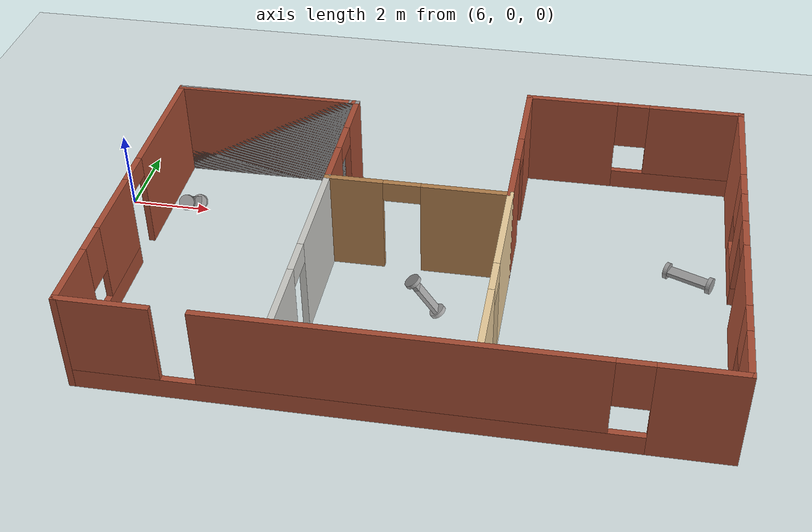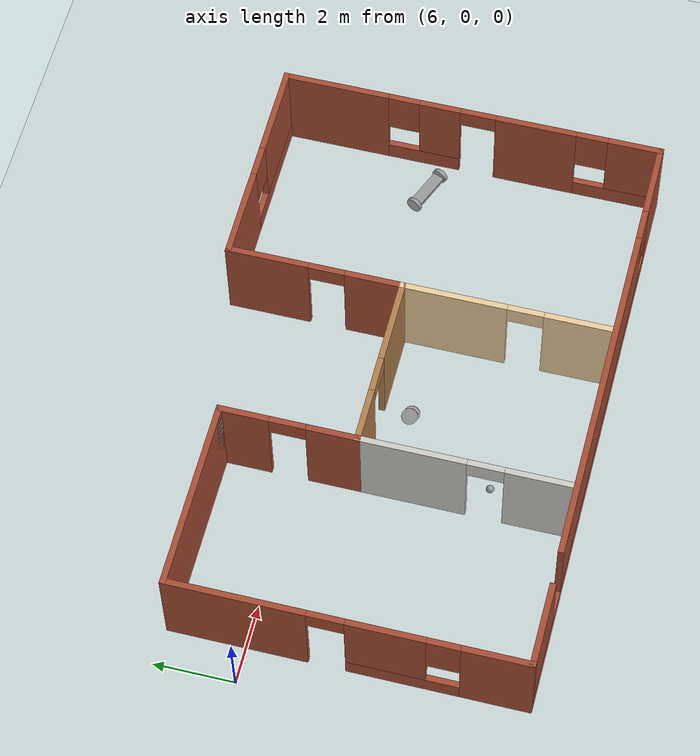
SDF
<sdf version="1.6">
 <world name="default">
  <plugin name="hello" filename="libhello.so"/>
  <light name="sun" type="directional">
   <pose>0 0 10 0 -0 0</pose>
   <diffuse>0.8 0.8 0.8 1</diffuse>
   <specular>0.2 0.2 0.2 1</specular>
   <attenuation>
    <range>1000</range>
    <constant>0.9</constant>
    <linear>0.01</linear>
    <quadratic>0.001</quadratic>
   </attenuation>
   <direction>-0.5 0.1 -0.9</direction>
   <spot><inner_angle>0</inner_angle><outer_angle>0</outer_angle><falloff>0</falloff></spot>
  </light>
  <model name="ground_plane">
   <static>1</static>
   <link name="link">
    <collision name="collision">
     <geometry><plane><normal>0 0 1</normal><size>100 100</size></plane></geometry>
     <surface>
      <contact><collide_bitmask>65535</collide_bitmask></contact>
      <friction><ode><mu>100</mu><mu2>50</mu2></ode></friction>
     </surface>
    </collision>
    <visual name="visual">
     <cast_shadows>0</cast_shadows>
     <geometry><plane><normal>0 0 1</normal><size>100 100</size></plane></geometry>
     <material>
      <script><uri>file://media/materials/scripts/gazebo.material</uri><name>Gazebo/Grey</name></script>
     </material>
    </visual>
   </link>
  </model>
  <gravity>0 0 -9.8</gravity>
  <magnetic_field>6e-06 2.3e-05 -4.2e-05</magnetic_field>
  <atmosphere type="adiabatic"/>
  <physics name="default_physics" default="0" type="ode">
   <max_step_size>0.001</max_step_size>
   <real_time_factor>1</real_time_factor>
   <real_time_update_rate>1000</real_time_update_rate>
  </physics>
  <scene><ambient>0.4 0.4 0.4 1</ambient><background>0.7 0.7 0.7 1</background><shadows>1</shadows></scene>
  <spherical_coordinates>
   <surface_model>EARTH_WGS84</surface_model>
   <latitude_deg>0</latitude_deg>
   <longitude_deg>0</longitude_deg>
   <elevation>0</elevation>
   <heading_deg>0</heading_deg>
  </spherical_coordinates>
  <model name="my_building">
   <pose>20.6773 -1.94195 0 0 -0 0</pose>
   <link name="Wall_0">
    <collision name="Wall_0_Collision">
     <geometry><box><size>4.75 0.15 2.5</size></box></geometry>
     <pose>0 0 1.25 0 -0 0</pose>
    </collision>
    <visual name="Wall_0_Visual">
     <pose>0 0 1.25 0 -0 0</pose>
     <geometry><box><size>4.75 0.15 2.5</size></box></geometry>
     <material>
      <script><uri>file://media/materials/scripts/gazebo.material</uri><name>Gazebo/Grey</name></script>
      <ambient>1 1 1 1</ambient>
     </material>
     <meta><layer>0</layer></meta>
    </visual>
    <pose>-11.3376 3.8 0 0 -0 0</pose>
   </link>
   <link name="Wall_1">
    <pose>-9.03756 2.125 0 0 -0 -1.5708</pose>
    <visual name="Wall_1_Visual_0">
     <pose>-1.10816 0 1.25 0 -0 0</pose>
     <geometry><box><size>1.28368 0.15 2.5</size></box></geometry>
     <material>
      <script><uri>file://media/materials/scripts/gazebo.material</uri><name>Gazebo/Bricks</name></script>
      <ambient>0.921569 0.807843 0.615686 1</ambient>
     </material>
     <meta><layer>0</layer></meta>
    </visual>
    <collision name="Wall_1_Collision_0">
     <geometry><box><size>1.28368 0.15 2.5</size></box></geometry>
     <pose>-1.10816 0 1.25 0 -0 0</pose>
    </collision>
    <visual name="Wall_1_Visual_1">
     <pose>1.09184 0 1.25 0 -0 0</pose>
     <geometry><box><size>1.31632 0.15 2.5</size></box></geometry>
     <material>
      <script><uri>file://media/materials/scripts/gazebo.material</uri><name>Gazebo/Bricks</name></script>
      <ambient>0.921569 0.807843 0.615686 1</ambient>
     </material>
     <meta><layer>0</layer></meta>
    </visual>
    <collision name="Wall_1_Collision_1">
     <geometry><box><size>1.31632 0.15 2.5</size></box></geometry>
     <pose>1.09184 0 1.25 0 -0 0</pose>
    </collision>
    <visual name="Wall_1_Visual_2">
     <pose>-0.016321 0 2.25 0 -0 0</pose>
     <geometry><box><size>0.9 0.15 0.5</size></box></geometry>
     <material>
      <script><uri>file://media/materials/scripts/gazebo.material</uri><name>Gazebo/Bricks</name></script>
      <ambient>0.921569 0.807843 0.615686 1</ambient>
     </material>
     <meta><layer>0</layer></meta>
    </visual>
    <collision name="Wall_1_Collision_2">
     <geometry><box><size>0.9 0.15 0.5</size></box></geometry>
     <pose>-0.016321 0 2.25 0 -0 0</pose>
    </collision>
   </link>
   <link name="Wall_11">
    <pose>-4.68756 -2.1 0 0 -0 -1.5708</pose>
    <visual name="Wall_11_Visual_0">
     <pose>-1.29151 0 1.25 0 -0 0</pose>
     <geometry><box><size>2.66698 0.15 2.5</size></box></geometry>
     <material>
      <script><uri>file://media/materials/scripts/gazebo.material</uri><name>Gazebo/Grey</name></script>
      <ambient>0.921569 0.807843 0.615686 1</ambient>
     </material>
     <meta><layer>0</layer></meta>
    </visual>
    <collision name="Wall_11_Collision_0">
     <geometry><box><size>2.66698 0.15 2.5</size></box></geometry>
     <pose>-1.29151 0 1.25 0 -0 0</pose>
    </collision>
    <visual name="Wall_11_Visual_1">
     <pose>1.78349 0 1.25 0 -0 0</pose>
     <geometry><box><size>1.68302 0.15 2.5</size></box></geometry>
     <material>
      <script><uri>file://media/materials/scripts/gazebo.material</uri><name>Gazebo/Grey</name></script>
      <ambient>0.921569 0.807843 0.615686 1</ambient>
     </material>
     <meta><layer>0</layer></meta>
    </visual>
    <collision name="Wall_11_Collision_1">
     <geometry><box><size>1.68302 0.15 2.5</size></box></geometry>
     <pose>1.78349 0 1.25 0 -0 0</pose>
    </collision>
    <visual name="Wall_11_Visual_2">
     <pose>0.491981 0 2.25 0 -0 0</pose>
     <geometry><box><size>0.9 0.15 0.5</size></box></geometry>
     <material>
      <script><uri>file://media/materials/scripts/gazebo.material</uri><name>Gazebo/Grey</name></script>
      <ambient>0.921569 0.807843 0.615686 1</ambient>
     </material>
     <meta><layer>0</layer></meta>
    </visual>
    <collision name="Wall_11_Collision_2">
     <geometry><box><size>0.9 0.15 0.5</size></box></geometry>
     <pose>0.491981 0 2.25 0 -0 0</pose>
    </collision>
   </link>
   <link name="Wall_13">
    <pose>-9.03756 -2.1 0 0 -0 -1.5708</pose>
    <visual name="Wall_13_Visual_0">
     <pose>-1.27128 0 1.25 0 -0 0</pose>
     <geometry><box><size>2.70744 0.15 2.5</size></box></geometry>
     <material>
      <script><uri>file://media/materials/scripts/gazebo.material</uri><name>Gazebo/CeilingTiled</name></script>
      <ambient>0.921569 0.807843 0.615686 1</ambient>
     </material>
     <meta><layer>0</layer></meta>
    </visual>
    <collision name="Wall_13_Collision_0">
     <geometry><box><size>2.70744 0.15 2.5</size></box></geometry>
     <pose>-1.27128 0 1.25 0 -0 0</pose>
    </collision>
    <visual name="Wall_13_Visual_1">
     <pose>1.80372 0 1.25 0 -0 0</pose>
     <geometry><box><size>1.64256 0.15 2.5</size></box></geometry>
     <material>
      <script><uri>file://media/materials/scripts/gazebo.material</uri><name>Gazebo/CeilingTiled</name></script>
      <ambient>0.921569 0.807843 0.615686 1</ambient>
     </material>
     <meta><layer>0</layer></meta>
    </visual>
    <collision name="Wall_13_Collision_1">
     <geometry><box><size>1.64256 0.15 2.5</size></box></geometry>
     <pose>1.80372 0 1.25 0 -0 0</pose>
    </collision>
    <visual name="Wall_13_Visual_2">
     <pose>0.532437 0 2.25 0 -0 0</pose>
     <geometry><box><size>0.9 0.15 0.5</size></box></geometry>
     <material>
      <script><uri>file://media/materials/scripts/gazebo.material</uri><name>Gazebo/CeilingTiled</name></script>
      <ambient>0.921569 0.807843 0.615686 1</ambient>
     </material>
     <meta><layer>0</layer></meta>
    </visual>
    <collision name="Wall_13_Collision_2">
     <geometry><box><size>0.9 0.15 0.5</size></box></geometry>
     <pose>0.532437 0 2.25 0 -0 0</pose>
    </collision>
   </link>
   <link name="Wall_2">
    <pose>-6.86256 0.45 0 0 -0 0</pose>
    <visual name="Wall_2_Visual_0">
     <pose>-1.54151 0 1.25 0 -0 0</pose>
     <geometry><box><size>1.41698 0.15 2.5</size></box></geometry>
     <material>
      <script><uri>file://media/materials/scripts/gazebo.material</uri><name>Gazebo/Wood</name></script>
      <ambient>1 1 1 1</ambient>
     </material>
     <meta><layer>0</layer></meta>
    </visual>
    <collision name="Wall_2_Collision_0">
     <geometry><box><size>1.41698 0.15 2.5</size></box></geometry>
     <pose>-1.54151 0 1.25 0 -0 0</pose>
    </collision>
    <visual name="Wall_2_Visual_1">
     <pose>1.15849 0 1.25 0 -0 0</pose>
     <geometry><box><size>2.18302 0.15 2.5</size></box></geometry>
     <material>
      <script><uri>file://media/materials/scripts/gazebo.material</uri><name>Gazebo/Wood</name></script>
      <ambient>1 1 1 1</ambient>
     </material>
     <meta><layer>0</layer></meta>
    </visual>
    <collision name="Wall_2_Collision_1">
     <geometry><box><size>2.18302 0.15 2.5</size></box></geometry>
     <pose>1.15849 0 1.25 0 -0 0</pose>
    </collision>
    <visual name="Wall_2_Visual_2">
     <pose>-0.383018 0 2.25 0 -0 0</pose>
     <geometry><box><size>0.9 0.15 0.5</size></box></geometry>
     <material>
      <script><uri>file://media/materials/scripts/gazebo.material</uri><name>Gazebo/Wood</name></script>
      <ambient>1 1 1 1</ambient>
     </material>
     <meta><layer>0</layer></meta>
    </visual>
    <collision name="Wall_2_Collision_2">
     <geometry><box><size>0.9 0.15 0.5</size></box></geometry>
     <pose>-0.383018 0 2.25 0 -0 0</pose>
    </collision>
   </link>
   <link name="Wall_3">
    <pose>-4.68756 2.625 0 0 -0 1.5708</pose>
    <visual name="Wall_3_Visual_0">
     <pose>-1.4907 0 1.25 0 -0 0</pose>
     <geometry><box><size>1.5186 0.15 2.5</size></box></geometry>
     <material>
      <script><uri>file://media/materials/scripts/gazebo.material</uri><name>Gazebo/Bricks</name></script>
      <ambient>0.921569 0.807843 0.615686 1</ambient>
     </material>
     <meta><layer>0</layer></meta>
    </visual>
    <collision name="Wall_3_Collision_0">
     <geometry><box><size>1.5186 0.15 2.5</size></box></geometry>
     <pose>-1.4907 0 1.25 0 -0 0</pose>
    </collision>
    <visual name="Wall_3_Visual_1">
     <pose>1.2093 0 1.25 0 -0 0</pose>
     <geometry><box><size>2.0814 0.15 2.5</size></box></geometry>
     <material>
      <script><uri>file://media/materials/scripts/gazebo.material</uri><name>Gazebo/Bricks</name></script>
      <ambient>0.921569 0.807843 0.615686 1</ambient>
     </material>
     <meta><layer>0</layer></meta>
    </visual>
    <collision name="Wall_3_Collision_1">
     <geometry><box><size>2.0814 0.15 2.5</size></box></geometry>
     <pose>1.2093 0 1.25 0 -0 0</pose>
    </collision>
    <visual name="Wall_3_Visual_2">
     <pose>-0.281401 0 2.25 0 -0 0</pose>
     <geometry><box><size>0.9 0.15 0.5</size></box></geometry>
     <material>
      <script><uri>file://media/materials/scripts/gazebo.material</uri><name>Gazebo/Bricks</name></script>
      <ambient>0.921569 0.807843 0.615686 1</ambient>
     </material>
     <meta><layer>0</layer></meta>
    </visual>
    <collision name="Wall_3_Collision_2">
     <geometry><box><size>0.9 0.15 0.5</size></box></geometry>
     <pose>-0.281401 0 2.25 0 -0 0</pose>
    </collision>
   </link>
   <link name="Wall_4">
    <pose>-2.01256 4.8 0 0 -0 0</pose>
    <visual name="Wall_4_Visual_0">
     <pose>-1.58212 0 1.25 0 -0 0</pose>
     <geometry><box><size>2.33575 0.15 2.5</size></box></geometry>
     <material>
      <script><uri>file://media/materials/scripts/gazebo.material</uri><name>Gazebo/Bricks</name></script>
      <ambient>0.921569 0.807843 0.615686 1</ambient>
     </material>
     <meta><layer>0</layer></meta>
    </visual>
    <collision name="Wall_4_Collision_0">
     <geometry><box><size>2.33575 0.15 2.5</size></box></geometry>
     <pose>-1.58212 0 1.25 0 -0 0</pose>
    </collision>
    <visual name="Wall_4_Visual_1">
     <pose>1.16788 0 0.25 0 -0 0</pose>
     <geometry><box><size>3.16425 0.15 0.5</size></box></geometry>
     <material>
      <script><uri>file://media/materials/scripts/gazebo.material</uri><name>Gazebo/Bricks</name></script>
      <ambient>0.921569 0.807843 0.615686 1</ambient>
     </material>
     <meta><layer>0</layer></meta>
    </visual>
    <collision name="Wall_4_Collision_1">
     <geometry><box><size>3.16425 0.15 0.5</size></box></geometry>
     <pose>1.16788 0 0.25 0 -0 0</pose>
    </collision>
    <visual name="Wall_4_Visual_2">
     <pose>1.56788 0 1.5 0 -0 0</pose>
     <geometry><box><size>2.36425 0.15 2</size></box></geometry>
     <material>
      <script><uri>file://media/materials/scripts/gazebo.material</uri><name>Gazebo/Bricks</name></script>
      <ambient>0.921569 0.807843 0.615686 1</ambient>
     </material>
     <meta><layer>0</layer></meta>
    </visual>
    <collision name="Wall_4_Collision_2">
     <geometry><box><size>2.36425 0.15 2</size></box></geometry>
     <pose>1.56788 0 1.5 0 -0 0</pose>
    </collision>
    <visual name="Wall_4_Visual_3">
     <pose>-0.014249 0 1.9 0 -0 0</pose>
     <geometry><box><size>0.8 0.15 1.2</size></box></geometry>
     <material>
      <script><uri>file://media/materials/scripts/gazebo.material</uri><name>Gazebo/Bricks</name></script>
      <ambient>0.921569 0.807843 0.615686 1</ambient>
     </material>
     <meta><layer>0</layer></meta>
    </visual>
    <collision name="Wall_4_Collision_3">
     <geometry><box><size>0.8 0.15 1.2</size></box></geometry>
     <pose>-0.014249 0 1.9 0 -0 0</pose>
    </collision>
   </link>
   <link name="Wall_5">
    <pose>0.662438 0 0 0 -0 -1.5708</pose>
    <visual name="Wall_5_Visual_0">
     <pose>-3.50588 0 1.25 0 -0 0</pose>
     <geometry><box><size>2.73823 0.15 2.5</size></box></geometry>
     <material>
      <script><uri>file://media/materials/scripts/gazebo.material</uri><name>Gazebo/Bricks</name></script>
      <ambient>0.921569 0.807843 0.615686 1</ambient>
     </material>
     <meta><layer>0</layer></meta>
    </visual>
    <collision name="Wall_5_Collision_0">
     <geometry><box><size>2.73823 0.15 2.5</size></box></geometry>
     <pose>-3.50588 0 1.25 0 -0 0</pose>
    </collision>
    <visual name="Wall_5_Visual_1">
     <pose>1.64605 0 1.25 0 -0 0</pose>
     <geometry><box><size>2.0628 0.15 2.5</size></box></geometry>
     <material>
      <script><uri>file://media/materials/scripts/gazebo.material</uri><name>Gazebo/Bricks</name></script>
      <ambient>0.921569 0.807843 0.615686 1</ambient>
     </material>
     <meta><layer>0</layer></meta>
    </visual>
    <collision name="Wall_5_Collision_1">
     <geometry><box><size>2.0628 0.15 2.5</size></box></geometry>
     <pose>1.64605 0 1.25 0 -0 0</pose>
    </collision>
    <visual name="Wall_5_Visual_2">
     <pose>-1.21106 0 0.25 0 -0 0</pose>
     <geometry><box><size>1.85141 0.15 0.5</size></box></geometry>
     <material>
      <script><uri>file://media/materials/scripts/gazebo.material</uri><name>Gazebo/Bricks</name></script>
      <ambient>0.921569 0.807843 0.615686 1</ambient>
     </material>
     <meta><layer>0</layer></meta>
    </visual>
    <collision name="Wall_5_Collision_2">
     <geometry><box><size>1.85141 0.15 0.5</size></box></geometry>
     <pose>-1.21106 0 0.25 0 -0 0</pose>
    </collision>
    <visual name="Wall_5_Visual_3">
     <pose>3.77622 0 0.25 0 -0 0</pose>
     <geometry><box><size>2.19755 0.15 0.5</size></box></geometry>
     <material>
      <script><uri>file://media/materials/scripts/gazebo.material</uri><name>Gazebo/Bricks</name></script>
      <ambient>0.921569 0.807843 0.615686 1</ambient>
     </material>
     <meta><layer>0</layer></meta>
    </visual>
    <collision name="Wall_5_Collision_3">
     <geometry><box><size>2.19755 0.15 0.5</size></box></geometry>
     <pose>3.77622 0 0.25 0 -0 0</pose>
    </collision>
    <visual name="Wall_5_Visual_4">
     <pose>-0.811059 0 1.5 0 -0 0</pose>
     <geometry><box><size>1.05141 0.15 2</size></box></geometry>
     <material>
      <script><uri>file://media/materials/scripts/gazebo.material</uri><name>Gazebo/Bricks</name></script>
      <ambient>0.921569 0.807843 0.615686 1</ambient>
     </material>
     <meta><layer>0</layer></meta>
    </visual>
    <collision name="Wall_5_Collision_4">
     <geometry><box><size>1.05141 0.15 2</size></box></geometry>
     <pose>-0.811059 0 1.5 0 -0 0</pose>
    </collision>
    <visual name="Wall_5_Visual_5">
     <pose>-0.811059 0 1.5 0 -0 0</pose>
     <geometry><box><size>1.05141 0.15 2</size></box></geometry>
     <material>
      <script><uri>file://media/materials/scripts/gazebo.material</uri><name>Gazebo/Bricks</name></script>
      <ambient>0.921569 0.807843 0.615686 1</ambient>
     </material>
     <meta><layer>0</layer></meta>
    </visual>
    <collision name="Wall_5_Collision_5">
     <geometry><box><size>1.05141 0.15 2</size></box></geometry>
     <pose>-0.811059 0 1.5 0 -0 0</pose>
    </collision>
    <visual name="Wall_5_Visual_6">
     <pose>4.17622 0 1.5 0 -0 0</pose>
     <geometry><box><size>1.39755 0.15 2</size></box></geometry>
     <material>
      <script><uri>file://media/materials/scripts/gazebo.material</uri><name>Gazebo/Bricks</name></script>
      <ambient>0.921569 0.807843 0.615686 1</ambient>
     </material>
     <meta><layer>0</layer></meta>
    </visual>
    <collision name="Wall_5_Collision_6">
     <geometry><box><size>1.39755 0.15 2</size></box></geometry>
     <pose>4.17622 0 1.5 0 -0 0</pose>
    </collision>
    <visual name="Wall_5_Visual_7">
     <pose>-1.73676 0 1.9 0 -0 0</pose>
     <geometry><box><size>0.8 0.15 1.2</size></box></geometry>
     <material>
      <script><uri>file://media/materials/scripts/gazebo.material</uri><name>Gazebo/Bricks</name></script>
      <ambient>0.921569 0.807843 0.615686 1</ambient>
     </material>
     <meta><layer>0</layer></meta>
    </visual>
    <collision name="Wall_5_Collision_7">
     <geometry><box><size>0.8 0.15 1.2</size></box></geometry>
     <pose>-1.73676 0 1.9 0 -0 0</pose>
    </collision>
    <visual name="Wall_5_Visual_8">
     <pose>3.07745 0 1.9 0 -0 0</pose>
     <geometry><box><size>0.8 0.15 1.2</size></box></geometry>
     <material>
      <script><uri>file://media/materials/scripts/gazebo.material</uri><name>Gazebo/Bricks</name></script>
      <ambient>0.921569 0.807843 0.615686 1</ambient>
     </material>
     <meta><layer>0</layer></meta>
    </visual>
    <collision name="Wall_5_Collision_8">
     <geometry><box><size>0.8 0.15 1.2</size></box></geometry>
     <pose>3.07745 0 1.9 0 -0 0</pose>
    </collision>
    <visual name="Wall_5_Visual_9">
     <pose>0.164647 0 2.25 0 -0 0</pose>
     <geometry><box><size>0.9 0.15 0.5</size></box></geometry>
     <material>
      <script><uri>file://media/materials/scripts/gazebo.material</uri><name>Gazebo/Bricks</name></script>
      <ambient>0.921569 0.807843 0.615686 1</ambient>
     </material>
     <meta><layer>0</layer></meta>
    </visual>
    <collision name="Wall_5_Collision_9">
     <geometry><box><size>0.9 0.15 0.5</size></box></geometry>
     <pose>0.164647 0 2.25 0 -0 0</pose>
    </collision>
    <visual name="Wall_5_Visual_10">
     <pose>0.164647 0 2.25 0 -0 0</pose>
     <geometry><box><size>0.9 0.15 0.5</size></box></geometry>
     <material>
      <script><uri>file://media/materials/scripts/gazebo.material</uri><name>Gazebo/Bricks</name></script>
      <ambient>0.921569 0.807843 0.615686 1</ambient>
     </material>
     <meta><layer>0</layer></meta>
    </visual>
    <collision name="Wall_5_Collision_10">
     <geometry><box><size>0.9 0.15 0.5</size></box></geometry>
     <pose>0.164647 0 2.25 0 -0 0</pose>
    </collision>
   </link>
   <link name="Wall_6">
    <pose>-6.51256 -4.8 0 0 -0 3.14159</pose>
    <visual name="Wall_6_Visual_0">
     <pose>-6.29038 0 1.25 0 -0 0</pose>
     <geometry><box><size>1.91924 0.15 2.5</size></box></geometry>
     <material>
      <script><uri>file://media/materials/scripts/gazebo.material</uri><name>Gazebo/Bricks</name></script>
      <ambient>1 1 1 1</ambient>
     </material>
     <meta><layer>0</layer></meta>
    </visual>
    <collision name="Wall_6_Collision_0">
     <geometry><box><size>1.91924 0.15 2.5</size></box></geometry>
     <pose>-6.29038 0 1.25 0 -0 0</pose>
    </collision>
    <visual name="Wall_6_Visual_1">
     <pose>0.959619 0 0.25 0 -0 0</pose>
     <geometry><box><size>12.5808 0.15 0.5</size></box></geometry>
     <material>
      <script><uri>file://media/materials/scripts/gazebo.material</uri><name>Gazebo/Bricks</name></script>
      <ambient>1 1 1 1</ambient>
     </material>
     <meta><layer>0</layer></meta>
    </visual>
    <collision name="Wall_6_Collision_1">
     <geometry><box><size>12.5808 0.15 0.5</size></box></geometry>
     <pose>0.959619 0 0.25 0 -0 0</pose>
    </collision>
    <visual name="Wall_6_Visual_2">
     <pose>-0.116549 0 1.5 0 -0 0</pose>
     <geometry><box><size>8.82843 0.15 2</size></box></geometry>
     <material>
      <script><uri>file://media/materials/scripts/gazebo.material</uri><name>Gazebo/Bricks</name></script>
      <ambient>1 1 1 1</ambient>
     </material>
     <meta><layer>0</layer></meta>
    </visual>
    <collision name="Wall_6_Collision_2">
     <geometry><box><size>8.82843 0.15 2</size></box></geometry>
     <pose>-0.116549 0 1.5 0 -0 0</pose>
    </collision>
    <visual name="Wall_6_Visual_3">
     <pose>6.17383 0 1.5 0 -0 0</pose>
     <geometry><box><size>2.15234 0.15 2</size></box></geometry>
     <material>
      <script><uri>file://media/materials/scripts/gazebo.material</uri><name>Gazebo/Bricks</name></script>
      <ambient>1 1 1 1</ambient>
     </material>
     <meta><layer>0</layer></meta>
    </visual>
    <collision name="Wall_6_Collision_3">
     <geometry><box><size>2.15234 0.15 2</size></box></geometry>
     <pose>6.17383 0 1.5 0 -0 0</pose>
    </collision>
    <visual name="Wall_6_Visual_4">
     <pose>-4.93076 0 1.9 0 -0 0</pose>
     <geometry><box><size>0.8 0.15 1.2</size></box></geometry>
     <material>
      <script><uri>file://media/materials/scripts/gazebo.material</uri><name>Gazebo/Bricks</name></script>
      <ambient>1 1 1 1</ambient>
     </material>
     <meta><layer>0</layer></meta>
    </visual>
    <collision name="Wall_6_Collision_4">
     <geometry><box><size>0.8 0.15 1.2</size></box></geometry>
     <pose>-4.93076 0 1.9 0 -0 0</pose>
    </collision>
    <visual name="Wall_6_Visual_5">
     <pose>4.29766 0 1.9 0 -0 0</pose>
     <geometry><box><size>0 0.15 1.2</size></box></geometry>
     <material>
      <script><uri>file://media/materials/scripts/gazebo.material</uri><name>Gazebo/Bricks</name></script>
      <ambient>1 1 1 1</ambient>
     </material>
     <meta><layer>0</layer></meta>
    </visual>
    <collision name="Wall_6_Collision_5">
     <geometry><box><size>0 0.15 1.2</size></box></geometry>
     <pose>4.29766 0 1.9 0 -0 0</pose>
    </collision>
   </link>
   <link name="Wall_7">
    <pose>-13.6876 -0.5 0 0 -0 1.5708</pose>
    <visual name="Wall_7_Visual_0">
     <pose>-3.5144 0 1.25 0 -0 0</pose>
     <geometry><box><size>1.7212 0.15 2.5</size></box></geometry>
     <material>
      <script><uri>file://media/materials/scripts/gazebo.material</uri><name>Gazebo/Bricks</name></script>
      <ambient>0.921569 0.807843 0.615686 1</ambient>
     </material>
     <meta><layer>0</layer></meta>
    </visual>
    <collision name="Wall_7_Collision_0">
     <geometry><box><size>1.7212 0.15 2.5</size></box></geometry>
     <pose>-3.5144 0 1.25 0 -0 0</pose>
    </collision>
    <visual name="Wall_7_Visual_1">
     <pose>2.66109 0 1.25 0 -0 0</pose>
     <geometry><box><size>3.42782 0.15 2.5</size></box></geometry>
     <material>
      <script><uri>file://media/materials/scripts/gazebo.material</uri><name>Gazebo/Bricks</name></script>
      <ambient>0.921569 0.807843 0.615686 1</ambient>
     </material>
     <meta><layer>0</layer></meta>
    </visual>
    <collision name="Wall_7_Collision_1">
     <geometry><box><size>3.42782 0.15 2.5</size></box></geometry>
     <pose>2.66109 0 1.25 0 -0 0</pose>
    </collision>
    <visual name="Wall_7_Visual_2">
     <pose>-1.30331 0 0.25 0 -0 0</pose>
     <geometry><box><size>2.70098 0.15 0.5</size></box></geometry>
     <material>
      <script><uri>file://media/materials/scripts/gazebo.material</uri><name>Gazebo/Bricks</name></script>
      <ambient>0.921569 0.807843 0.615686 1</ambient>
     </material>
     <meta><layer>0</layer></meta>
    </visual>
    <collision name="Wall_7_Collision_2">
     <geometry><box><size>2.70098 0.15 0.5</size></box></geometry>
     <pose>-1.30331 0 0.25 0 -0 0</pose>
    </collision>
    <visual name="Wall_7_Visual_3">
     <pose>-0.903314 0 1.5 0 -0 0</pose>
     <geometry><box><size>1.90098 0.15 2</size></box></geometry>
     <material>
      <script><uri>file://media/materials/scripts/gazebo.material</uri><name>Gazebo/Bricks</name></script>
      <ambient>0.921569 0.807843 0.615686 1</ambient>
     </material>
     <meta><layer>0</layer></meta>
    </visual>
    <collision name="Wall_7_Collision_3">
     <geometry><box><size>1.90098 0.15 2</size></box></geometry>
     <pose>-0.903314 0 1.5 0 -0 0</pose>
    </collision>
    <visual name="Wall_7_Visual_4">
     <pose>-2.2538 0 1.9 0 -0 0</pose>
     <geometry><box><size>0.8 0.15 1.2</size></box></geometry>
     <material>
      <script><uri>file://media/materials/scripts/gazebo.material</uri><name>Gazebo/Bricks</name></script>
      <ambient>0.921569 0.807843 0.615686 1</ambient>
     </material>
     <meta><layer>0</layer></meta>
    </visual>
    <collision name="Wall_7_Collision_4">
     <geometry><box><size>0.8 0.15 1.2</size></box></geometry>
     <pose>-2.2538 0 1.9 0 -0 0</pose>
    </collision>
    <visual name="Wall_7_Visual_5">
     <pose>0.497176 0 2.25 0 -0 0</pose>
     <geometry><box><size>0.9 0.15 0.5</size></box></geometry>
     <material>
      <script><uri>file://media/materials/scripts/gazebo.material</uri><name>Gazebo/Bricks</name></script>
      <ambient>0.921569 0.807843 0.615686 1</ambient>
     </material>
     <meta><layer>0</layer></meta>
    </visual>
    <collision name="Wall_7_Collision_5">
     <geometry><box><size>0.9 0.15 0.5</size></box></geometry>
     <pose>0.497176 0 2.25 0 -0 0</pose>
    </collision>
   </link>
   <link name="Wall_8">
    <collision name="Wall_8_Collision">
     <geometry><box><size>4.8 0.15 2.5</size></box></geometry>
     <pose>0 0 1.25 0 -0 0</pose>
    </collision>
    <visual name="Wall_8_Visual">
     <pose>0 0 1.25 0 -0 0</pose>
     <geometry><box><size>4.8 0.15 2.5</size></box></geometry>
     <material>
      <script><uri>file://media/materials/scripts/gazebo.material</uri><name>Gazebo/Bricks</name></script>
      <ambient>0.921569 0.807843 0.615686 1</ambient>
     </material>
     <meta><layer>0</layer></meta>
    </visual>
    <pose>-11.3626 3.8 0 0 -0 0</pose>
   </link>
   <static>1</static>
  </model>
  <model name="robot_clone_clone">
   <link name="link_0">
    <inertial>
     <mass>1</mass>
     <inertia><ixx>0.145833</ixx><ixy>0</ixy><ixz>0</ixz><iyy>0.145833</iyy><iyz>0</iyz><izz>0.125</izz></inertia>
    </inertial>
    <pose>-0 -0.55002 0 1.5707 -0 0</pose>
    <visual name="visual">
     <geometry><cylinder><radius>0.2</radius><length>0.1</length></cylinder></geometry>
     <material>
      <lighting>1</lighting>
      <script><uri>file://media/materials/scripts/gazebo.material</uri><name>Gazebo/Grey</name></script>
      <shader type="pixel"><normal_map>__default__</normal_map></shader>
      <ambient>0.3 0.3 0.3 1</ambient>
      <diffuse>0.7 0.7 0.7 1</diffuse>
      <specular>0.01 0.01 0.01 1</specular>
      <emissive>0 0 0 1</emissive>
     </material>
    </visual>
    <collision name="collision">
     <geometry><cylinder><radius>0.2</radius><length>0.1</length></cylinder></geometry>
     <surface>
      <friction>
       <ode><mu>1</mu><mu2>1</mu2><fdir1>0 0 0</fdir1><slip1>0</slip1><slip2>0</slip2></ode>
       <torsional>
        <coefficient>1</coefficient>
        <patch_radius>0</patch_radius>
        <surface_radius>0</surface_radius>
        <use_patch_radius>1</use_patch_radius>
        <ode><slip>0</slip></ode>
       </torsional>
      </friction>
      <bounce><restitution_coefficient>0</restitution_coefficient><threshold>1e+06</threshold></bounce>
      <contact>
       <collide_without_contact>0</collide_without_contact>
       <collide_without_contact_bitmask>1</collide_without_contact_bitmask>
       <collide_bitmask>1</collide_bitmask>
       <ode>
        <soft_cfm>0</soft_cfm>
        <soft_erp>0.2</soft_erp>
        <kp>1e+13</kp>
        <kd>1</kd>
        <max_vel>0.01</max_vel>
        <min_depth>0</min_depth>
       </ode>
       <bullet>
        <split_impulse>1</split_impulse>
        <split_impulse_penetration_threshold>-0.01</split_impulse_penetration_threshold>
        <soft_cfm>0</soft_cfm>
        <soft_erp>0.2</soft_erp>
        <kp>1e+13</kp>
        <kd>1</kd>
       </bullet>
      </contact>
     </surface>
    </collision>
   </link>
   <link name="link_0_clone">
    <inertial>
     <mass>1</mass>
     <inertia><ixx>0.145833</ixx><ixy>0</ixy><ixz>0</ixz><iyy>0.145833</iyy><iyz>0</iyz><izz>0.125</izz></inertia>
    </inertial>
    <pose>-0 0.550018 0 1.5707 -0 0</pose>
    <visual name="visual">
     <geometry><cylinder><radius>0.2</radius><length>0.1</length></cylinder></geometry>
     <material>
      <lighting>1</lighting>
      <script><uri>file://media/materials/scripts/gazebo.material</uri><name>Gazebo/Grey</name></script>
      <shader type="pixel"><normal_map>__default__</normal_map></shader>
      <ambient>0.3 0.3 0.3 1</ambient>
      <diffuse>0.7 0.7 0.7 1</diffuse>
      <specular>0.01 0.01 0.01 1</specular>
      <emissive>0 0 0 1</emissive>
     </material>
    </visual>
    <collision name="collision">
     <geometry><cylinder><radius>0.2</radius><length>0.1</length></cylinder></geometry>
     <surface>
      <friction>
       <ode><mu>1</mu><mu2>1</mu2><fdir1>0 0 0</fdir1><slip1>0</slip1><slip2>0</slip2></ode>
       <torsional>
        <coefficient>1</coefficient>
        <patch_radius>0</patch_radius>
        <surface_radius>0</surface_radius>
        <use_patch_radius>1</use_patch_radius>
        <ode><slip>0</slip></ode>
       </torsional>
      </friction>
      <bounce><restitution_coefficient>0</restitution_coefficient><threshold>1e+06</threshold></bounce>
      <contact>
       <collide_without_contact>0</collide_without_contact>
       <collide_without_contact_bitmask>1</collide_without_contact_bitmask>
       <collide_bitmask>1</collide_bitmask>
       <ode>
        <soft_cfm>0</soft_cfm>
        <soft_erp>0.2</soft_erp>
        <kp>1e+13</kp>
        <kd>1</kd>
        <max_vel>0.01</max_vel>
        <min_depth>0</min_depth>
       </ode>
       <bullet>
        <split_impulse>1</split_impulse>
        <split_impulse_penetration_threshold>-0.01</split_impulse_penetration_threshold>
        <soft_cfm>0</soft_cfm>
        <soft_erp>0.2</soft_erp>
        <kp>1e+13</kp>
        <kd>1</kd>
       </bullet>
      </contact>
     </surface>
    </collision>
   </link>
   <link name="link_1">
    <inertial>
     <mass>1</mass>
     <inertia>
      <ixx>0.166667</ixx>
      <ixy>0</ixy>
      <ixz>0</ixz>
      <iyy>0.166667</iyy>
      <iyz>0</iyz>
      <izz>0.166667</izz>
     </inertia>
    </inertial>
    <pose>-0 -1e-06 0 0 -0 0</pose>
    <visual name="visual">
     <geometry><box><size>0.3 1 0.1</size></box></geometry>
     <material>
      <lighting>1</lighting>
      <script><uri>file://media/materials/scripts/gazebo.material</uri><name>Gazebo/Grey</name></script>
      <shader type="pixel"><normal_map>__default__</normal_map></shader>
      <ambient>0.3 0.3 0.3 1</ambient>
      <diffuse>0.7 0.7 0.7 1</diffuse>
      <specular>0.01 0.01 0.01 1</specular>
      <emissive>0 0 0 1</emissive>
     </material>
    </visual>
    <collision name="collision">
     <geometry><box><size>0.3 1 0.1</size></box></geometry>
     <surface>
      <friction>
       <ode><mu>1</mu><mu2>1</mu2><fdir1>0 0 0</fdir1><slip1>0</slip1><slip2>0</slip2></ode>
       <torsional>
        <coefficient>1</coefficient>
        <patch_radius>0</patch_radius>
        <surface_radius>0</surface_radius>
        <use_patch_radius>1</use_patch_radius>
        <ode><slip>0</slip></ode>
       </torsional>
      </friction>
      <bounce><restitution_coefficient>0</restitution_coefficient><threshold>1e+06</threshold></bounce>
      <contact>
       <collide_without_contact>0</collide_without_contact>
       <collide_without_contact_bitmask>1</collide_without_contact_bitmask>
       <collide_bitmask>1</collide_bitmask>
       <ode>
        <soft_cfm>0</soft_cfm>
        <soft_erp>0.2</soft_erp>
        <kp>1e+13</kp>
        <kd>1</kd>
        <max_vel>0.01</max_vel>
        <min_depth>0</min_depth>
       </ode>
       <bullet>
        <split_impulse>1</split_impulse>
        <split_impulse_penetration_threshold>-0.01</split_impulse_penetration_threshold>
        <soft_cfm>0</soft_cfm>
        <soft_erp>0.2</soft_erp>
        <kp>1e+13</kp>
        <kd>1</kd>
       </bullet>
      </contact>
     </surface>
    </collision>
   </link>
   <joint name="link_1_JOINT_0" type="revolute">
    <parent>link_1</parent>
    <child>link_0</child>
    <axis>
     <xyz>0 0 1</xyz>
     <limit>
      <lower>-1.79769e+308</lower>
      <upper>1.79769e+308</upper>
      <effort>-1</effort>
      <velocity>-1</velocity>
     </limit>
     <dynamics>
      <spring_reference>0</spring_reference>
      <spring_stiffness>0</spring_stiffness>
      <damping>0</damping>
     </dynamics>
     <use_parent_model_frame>1</use_parent_model_frame>
    </axis>
    <physics>
     <ode><limit><cfm>0</cfm><erp>0.2</erp></limit><suspension><cfm>0</cfm><erp>0.2</erp></suspension></ode>
    </physics>
   </joint>
   <joint name="link_1_JOINT_1" type="revolute">
    <parent>link_1</parent>
    <child>link_0_clone</child>
    <axis>
     <xyz>0 0 1</xyz>
     <limit>
      <lower>-1.79769e+308</lower>
      <upper>1.79769e+308</upper>
      <effort>-1</effort>
      <velocity>-1</velocity>
     </limit>
     <dynamics>
      <spring_reference>0</spring_reference>
      <spring_stiffness>0</spring_stiffness>
      <damping>0</damping>
     </dynamics>
     <use_parent_model_frame>1</use_parent_model_frame>
    </axis>
    <physics>
     <ode><limit><cfm>0</cfm><erp>0.2</erp></limit><suspension><cfm>0</cfm><erp>0.2</erp></suspension></ode>
    </physics>
   </joint>
   <static>0</static>
   <pose>7.45575 0.418132 -0.121555 -1.5708 0.962627 -1.56772</pose>
  </model>
  <model name="robot_clone_clone_0">
   <link name="link_0">
    <inertial>
     <mass>1</mass>
     <inertia><ixx>0.145833</ixx><ixy>0</ixy><ixz>0</ixz><iyy>0.145833</iyy><iyz>0</iyz><izz>0.125</izz></inertia>
    </inertial>
    <pose>-0 -0.55002 0 1.5707 -0 0</pose>
    <visual name="visual">
     <geometry><cylinder><radius>0.2</radius><length>0.1</length></cylinder></geometry>
     <material>
      <lighting>1</lighting>
      <script><uri>file://media/materials/scripts/gazebo.material</uri><name>Gazebo/Grey</name></script>
      <shader type="pixel"><normal_map>__default__</normal_map></shader>
      <ambient>0.3 0.3 0.3 1</ambient>
      <diffuse>0.7 0.7 0.7 1</diffuse>
      <specular>0.01 0.01 0.01 1</specular>
      <emissive>0 0 0 1</emissive>
     </material>
    </visual>
    <collision name="collision">
     <geometry><cylinder><radius>0.2</radius><length>0.1</length></cylinder></geometry>
     <surface>
      <friction>
       <ode><mu>1</mu><mu2>1</mu2><fdir1>0 0 0</fdir1><slip1>0</slip1><slip2>0</slip2></ode>
       <torsional>
        <coefficient>1</coefficient>
        <patch_radius>0</patch_radius>
        <surface_radius>0</surface_radius>
        <use_patch_radius>1</use_patch_radius>
        <ode><slip>0</slip></ode>
       </torsional>
      </friction>
      <bounce><restitution_coefficient>0</restitution_coefficient><threshold>1e+06</threshold></bounce>
      <contact>
       <collide_without_contact>0</collide_without_contact>
       <collide_without_contact_bitmask>1</collide_without_contact_bitmask>
       <collide_bitmask>1</collide_bitmask>
       <ode>
        <soft_cfm>0</soft_cfm>
        <soft_erp>0.2</soft_erp>
        <kp>1e+13</kp>
        <kd>1</kd>
        <max_vel>0.01</max_vel>
        <min_depth>0</min_depth>
       </ode>
       <bullet>
        <split_impulse>1</split_impulse>
        <split_impulse_penetration_threshold>-0.01</split_impulse_penetration_threshold>
        <soft_cfm>0</soft_cfm>
        <soft_erp>0.2</soft_erp>
        <kp>1e+13</kp>
        <kd>1</kd>
       </bullet>
      </contact>
     </surface>
    </collision>
   </link>
   <link name="link_0_clone">
    <inertial>
     <mass>1</mass>
     <inertia><ixx>0.145833</ixx><ixy>0</ixy><ixz>0</ixz><iyy>0.145833</iyy><iyz>0</iyz><izz>0.125</izz></inertia>
    </inertial>
    <pose>-0 0.550018 0 1.5707 -0 0</pose>
    <visual name="visual">
     <geometry><cylinder><radius>0.2</radius><length>0.1</length></cylinder></geometry>
     <material>
      <lighting>1</lighting>
      <script><uri>file://media/materials/scripts/gazebo.material</uri><name>Gazebo/Grey</name></script>
      <shader type="pixel"><normal_map>__default__</normal_map></shader>
      <ambient>0.3 0.3 0.3 1</ambient>
      <diffuse>0.7 0.7 0.7 1</diffuse>
      <specular>0.01 0.01 0.01 1</specular>
      <emissive>0 0 0 1</emissive>
     </material>
    </visual>
    <collision name="collision">
     <geometry><cylinder><radius>0.2</radius><length>0.1</length></cylinder></geometry>
     <surface>
      <friction>
       <ode><mu>1</mu><mu2>1</mu2><fdir1>0 0 0</fdir1><slip1>0</slip1><slip2>0</slip2></ode>
       <torsional>
        <coefficient>1</coefficient>
        <patch_radius>0</patch_radius>
        <surface_radius>0</surface_radius>
        <use_patch_radius>1</use_patch_radius>
        <ode><slip>0</slip></ode>
       </torsional>
      </friction>
      <bounce><restitution_coefficient>0</restitution_coefficient><threshold>1e+06</threshold></bounce>
      <contact>
       <collide_without_contact>0</collide_without_contact>
       <collide_without_contact_bitmask>1</collide_without_contact_bitmask>
       <collide_bitmask>1</collide_bitmask>
       <ode>
        <soft_cfm>0</soft_cfm>
        <soft_erp>0.2</soft_erp>
        <kp>1e+13</kp>
        <kd>1</kd>
        <max_vel>0.01</max_vel>
        <min_depth>0</min_depth>
       </ode>
       <bullet>
        <split_impulse>1</split_impulse>
        <split_impulse_penetration_threshold>-0.01</split_impulse_penetration_threshold>
        <soft_cfm>0</soft_cfm>
        <soft_erp>0.2</soft_erp>
        <kp>1e+13</kp>
        <kd>1</kd>
       </bullet>
      </contact>
     </surface>
    </collision>
   </link>
   <link name="link_1">
    <inertial>
     <mass>1</mass>
     <inertia>
      <ixx>0.166667</ixx>
      <ixy>0</ixy>
      <ixz>0</ixz>
      <iyy>0.166667</iyy>
      <iyz>0</iyz>
      <izz>0.166667</izz>
     </inertia>
    </inertial>
    <pose>-0 -1e-06 0 0 -0 0</pose>
    <visual name="visual">
     <geometry><box><size>0.3 1 0.1</size></box></geometry>
     <material>
      <lighting>1</lighting>
      <script><uri>file://media/materials/scripts/gazebo.material</uri><name>Gazebo/Grey</name></script>
      <shader type="pixel"><normal_map>__default__</normal_map></shader>
      <ambient>0.3 0.3 0.3 1</ambient>
      <diffuse>0.7 0.7 0.7 1</diffuse>
      <specular>0.01 0.01 0.01 1</specular>
      <emissive>0 0 0 1</emissive>
     </material>
    </visual>
    <collision name="collision">
     <geometry><box><size>0.3 1 0.1</size></box></geometry>
     <surface>
      <friction>
       <ode><mu>1</mu><mu2>1</mu2><fdir1>0 0 0</fdir1><slip1>0</slip1><slip2>0</slip2></ode>
       <torsional>
        <coefficient>1</coefficient>
        <patch_radius>0</patch_radius>
        <surface_radius>0</surface_radius>
        <use_patch_radius>1</use_patch_radius>
        <ode><slip>0</slip></ode>
       </torsional>
      </friction>
      <bounce><restitution_coefficient>0</restitution_coefficient><threshold>1e+06</threshold></bounce>
      <contact>
       <collide_without_contact>0</collide_without_contact>
       <collide_without_contact_bitmask>1</collide_without_contact_bitmask>
       <collide_bitmask>1</collide_bitmask>
       <ode>
        <soft_cfm>0</soft_cfm>
        <soft_erp>0.2</soft_erp>
        <kp>1e+13</kp>
        <kd>1</kd>
        <max_vel>0.01</max_vel>
        <min_depth>0</min_depth>
       </ode>
       <bullet>
        <split_impulse>1</split_impulse>
        <split_impulse_penetration_threshold>-0.01</split_impulse_penetration_threshold>
        <soft_cfm>0</soft_cfm>
        <soft_erp>0.2</soft_erp>
        <kp>1e+13</kp>
        <kd>1</kd>
       </bullet>
      </contact>
     </surface>
    </collision>
   </link>
   <joint name="link_1_JOINT_0" type="revolute">
    <parent>link_1</parent>
    <child>link_0</child>
    <axis>
     <xyz>0 0 1</xyz>
     <limit>
      <lower>-1.79769e+308</lower>
      <upper>1.79769e+308</upper>
      <effort>-1</effort>
      <velocity>-1</velocity>
     </limit>
     <dynamics>
      <spring_reference>0</spring_reference>
      <spring_stiffness>0</spring_stiffness>
      <damping>0</damping>
     </dynamics>
     <use_parent_model_frame>1</use_parent_model_frame>
    </axis>
    <physics>
     <ode><limit><cfm>0</cfm><erp>0.2</erp></limit><suspension><cfm>0</cfm><erp>0.2</erp></suspension></ode>
    </physics>
   </joint>
   <joint name="link_1_JOINT_1" type="revolute">
    <parent>link_1</parent>
    <child>link_0_clone</child>
    <axis>
     <xyz>0 0 1</xyz>
     <limit>
      <lower>-1.79769e+308</lower>
      <upper>1.79769e+308</upper>
      <effort>-1</effort>
      <velocity>-1</velocity>
     </limit>
     <dynamics>
      <spring_reference>0</spring_reference>
      <spring_stiffness>0</spring_stiffness>
      <damping>0</damping>
     </dynamics>
     <use_parent_model_frame>1</use_parent_model_frame>
    </axis>
    <physics>
     <ode><limit><cfm>0</cfm><erp>0.2</erp></limit><suspension><cfm>0</cfm><erp>0.2</erp></suspension></ode>
    </physics>
   </joint>
   <static>0</static>
   <pose>14.0938 -2.16816 -0.310996 -0.99734 0.03992 -1.49018</pose>
  </model>
  <model name="robot_clone_clone_1">
   <link name="link_0">
    <inertial>
     <mass>1</mass>
     <inertia><ixx>0.145833</ixx><ixy>0</ixy><ixz>0</ixz><iyy>0.145833</iyy><iyz>0</iyz><izz>0.125</izz></inertia>
    </inertial>
    <pose>-0 -0.55002 0 1.5707 -0 0</pose>
    <visual name="visual">
     <geometry><cylinder><radius>0.2</radius><length>0.1</length></cylinder></geometry>
     <material>
      <lighting>1</lighting>
      <script><uri>file://media/materials/scripts/gazebo.material</uri><name>Gazebo/Grey</name></script>
      <shader type="pixel"><normal_map>__default__</normal_map></shader>
      <ambient>0.3 0.3 0.3 1</ambient>
      <diffuse>0.7 0.7 0.7 1</diffuse>
      <specular>0.01 0.01 0.01 1</specular>
      <emissive>0 0 0 1</emissive>
     </material>
    </visual>
    <collision name="collision">
     <geometry><cylinder><radius>0.2</radius><length>0.1</length></cylinder></geometry>
     <surface>
      <friction>
       <ode><mu>1</mu><mu2>1</mu2><fdir1>0 0 0</fdir1><slip1>0</slip1><slip2>0</slip2></ode>
       <torsional>
        <coefficient>1</coefficient>
        <patch_radius>0</patch_radius>
        <surface_radius>0</surface_radius>
        <use_patch_radius>1</use_patch_radius>
        <ode><slip>0</slip></ode>
       </torsional>
      </friction>
      <bounce><restitution_coefficient>0</restitution_coefficient><threshold>1e+06</threshold></bounce>
      <contact>
       <collide_without_contact>0</collide_without_contact>
       <collide_without_contact_bitmask>1</collide_without_contact_bitmask>
       <collide_bitmask>1</collide_bitmask>
       <ode>
        <soft_cfm>0</soft_cfm>
        <soft_erp>0.2</soft_erp>
        <kp>1e+13</kp>
        <kd>1</kd>
        <max_vel>0.01</max_vel>
        <min_depth>0</min_depth>
       </ode>
       <bullet>
        <split_impulse>1</split_impulse>
        <split_impulse_penetration_threshold>-0.01</split_impulse_penetration_threshold>
        <soft_cfm>0</soft_cfm>
        <soft_erp>0.2</soft_erp>
        <kp>1e+13</kp>
        <kd>1</kd>
       </bullet>
      </contact>
     </surface>
    </collision>
   </link>
   <link name="link_0_clone">
    <inertial>
     <mass>1</mass>
     <inertia><ixx>0.145833</ixx><ixy>0</ixy><ixz>0</ixz><iyy>0.145833</iyy><iyz>0</iyz><izz>0.125</izz></inertia>
    </inertial>
    <pose>-0 0.550018 0 1.5707 -0 0</pose>
    <visual name="visual">
     <geometry><cylinder><radius>0.2</radius><length>0.1</length></cylinder></geometry>
     <material>
      <lighting>1</lighting>
      <script><uri>file://media/materials/scripts/gazebo.material</uri><name>Gazebo/Grey</name></script>
      <shader type="pixel"><normal_map>__default__</normal_map></shader>
      <ambient>0.3 0.3 0.3 1</ambient>
      <diffuse>0.7 0.7 0.7 1</diffuse>
      <specular>0.01 0.01 0.01 1</specular>
      <emissive>0 0 0 1</emissive>
     </material>
    </visual>
    <collision name="collision">
     <geometry><cylinder><radius>0.2</radius><length>0.1</length></cylinder></geometry>
     <surface>
      <friction>
       <ode><mu>1</mu><mu2>1</mu2><fdir1>0 0 0</fdir1><slip1>0</slip1><slip2>0</slip2></ode>
       <torsional>
        <coefficient>1</coefficient>
        <patch_radius>0</patch_radius>
        <surface_radius>0</surface_radius>
        <use_patch_radius>1</use_patch_radius>
        <ode><slip>0</slip></ode>
       </torsional>
      </friction>
      <bounce><restitution_coefficient>0</restitution_coefficient><threshold>1e+06</threshold></bounce>
      <contact>
       <collide_without_contact>0</collide_without_contact>
       <collide_without_contact_bitmask>1</collide_without_contact_bitmask>
       <collide_bitmask>1</collide_bitmask>
       <ode>
        <soft_cfm>0</soft_cfm>
        <soft_erp>0.2</soft_erp>
        <kp>1e+13</kp>
        <kd>1</kd>
        <max_vel>0.01</max_vel>
        <min_depth>0</min_depth>
       </ode>
       <bullet>
        <split_impulse>1</split_impulse>
        <split_impulse_penetration_threshold>-0.01</split_impulse_penetration_threshold>
        <soft_cfm>0</soft_cfm>
        <soft_erp>0.2</soft_erp>
        <kp>1e+13</kp>
        <kd>1</kd>
       </bullet>
      </contact>
     </surface>
    </collision>
   </link>
   <link name="link_1">
    <inertial>
     <mass>1</mass>
     <inertia>
      <ixx>0.166667</ixx>
      <ixy>0</ixy>
      <ixz>0</ixz>
      <iyy>0.166667</iyy>
      <iyz>0</iyz>
      <izz>0.166667</izz>
     </inertia>
    </inertial>
    <pose>-0 -1e-06 0 0 -0 0</pose>
    <visual name="visual">
     <geometry><box><size>0.3 1 0.1</size></box></geometry>
     <material>
      <lighting>1</lighting>
      <script><uri>file://media/materials/scripts/gazebo.material</uri><name>Gazebo/Grey</name></script>
      <shader type="pixel"><normal_map>__default__</normal_map></shader>
      <ambient>0.3 0.3 0.3 1</ambient>
      <diffuse>0.7 0.7 0.7 1</diffuse>
      <specular>0.01 0.01 0.01 1</specular>
      <emissive>0 0 0 1</emissive>
     </material>
    </visual>
    <collision name="collision">
     <geometry><box><size>0.3 1 0.1</size></box></geometry>
     <surface>
      <friction>
       <ode><mu>1</mu><mu2>1</mu2><fdir1>0 0 0</fdir1><slip1>0</slip1><slip2>0</slip2></ode>
       <torsional>
        <coefficient>1</coefficient>
        <patch_radius>0</patch_radius>
        <surface_radius>0</surface_radius>
        <use_patch_radius>1</use_patch_radius>
        <ode><slip>0</slip></ode>
       </torsional>
      </friction>
      <bounce><restitution_coefficient>0</restitution_coefficient><threshold>1e+06</threshold></bounce>
      <contact>
       <collide_without_contact>0</collide_without_contact>
       <collide_without_contact_bitmask>1</collide_without_contact_bitmask>
       <collide_bitmask>1</collide_bitmask>
       <ode>
        <soft_cfm>0</soft_cfm>
        <soft_erp>0.2</soft_erp>
        <kp>1e+13</kp>
        <kd>1</kd>
        <max_vel>0.01</max_vel>
        <min_depth>0</min_depth>
       </ode>
       <bullet>
        <split_impulse>1</split_impulse>
        <split_impulse_penetration_threshold>-0.01</split_impulse_penetration_threshold>
        <soft_cfm>0</soft_cfm>
        <soft_erp>0.2</soft_erp>
        <kp>1e+13</kp>
        <kd>1</kd>
       </bullet>
      </contact>
     </surface>
    </collision>
   </link>
   <joint name="link_1_JOINT_0" type="revolute">
    <parent>link_1</parent>
    <child>link_0</child>
    <axis>
     <xyz>0 0 1</xyz>
     <limit>
      <lower>-1.79769e+308</lower>
      <upper>1.79769e+308</upper>
      <effort>-1</effort>
      <velocity>-1</velocity>
     </limit>
     <dynamics>
      <spring_reference>0</spring_reference>
      <spring_stiffness>0</spring_stiffness>
      <damping>0</damping>
     </dynamics>
     <use_parent_model_frame>1</use_parent_model_frame>
    </axis>
    <physics>
     <ode><limit><cfm>0</cfm><erp>0.2</erp></limit><suspension><cfm>0</cfm><erp>0.2</erp></suspension></ode>
    </physics>
   </joint>
   <joint name="link_1_JOINT_1" type="revolute">
    <parent>link_1</parent>
    <child>link_0_clone</child>
    <axis>
     <xyz>0 0 1</xyz>
     <limit>
      <lower>-1.79769e+308</lower>
      <upper>1.79769e+308</upper>
      <effort>-1</effort>
      <velocity>-1</velocity>
     </limit>
     <dynamics>
      <spring_reference>0</spring_reference>
      <spring_stiffness>0</spring_stiffness>
      <damping>0</damping>
     </dynamics>
     <use_parent_model_frame>1</use_parent_model_frame>
    </axis>
    <physics>
     <ode><limit><cfm>0</cfm><erp>0.2</erp></limit><suspension><cfm>0</cfm><erp>0.2</erp></suspension></ode>
    </physics>
   </joint>
   <static>0</static>
   <pose>20.3355 -1.05142 0.200001 -7e-06 -0.000103 1.18012</pose>
  </model>
  <model name="myball2">
   <link name="link_0">
    <inertial>
     <mass>1</mass>
     <inertia><ixx>0.1</ixx><ixy>0</ixy><ixz>0</ixz><iyy>0.1</iyy><iyz>0</iyz><izz>0.1</izz></inertia>
    </inertial>
    <visual name="visual">
     <geometry><sphere><radius>0.1</radius></sphere></geometry>
     <material>
      <lighting>1</lighting>
      <script><uri>file://media/materials/scripts/gazebo.material</uri><name>Gazebo/Grey</name></script>
      <shader type="pixel"><normal_map>__default__</normal_map></shader>
      <ambient>1 1 1 1</ambient>
      <diffuse>1 1 1 1</diffuse>
      <specular>1 1 1 1</specular>
      <emissive>1 1 1 1</emissive>
     </material>
    </visual>
    <collision name="collision">
     <geometry><sphere><radius>0.1</radius></sphere></geometry>
     <surface>
      <friction>
       <ode><mu>1</mu><mu2>1</mu2><fdir1>0 0 0</fdir1><slip1>0</slip1><slip2>0</slip2></ode>
       <torsional>
        <coefficient>1</coefficient>
        <patch_radius>0</patch_radius>
        <surface_radius>0</surface_radius>
        <use_patch_radius>1</use_patch_radius>
        <ode><slip>0</slip></ode>
       </torsional>
      </friction>
      <bounce><restitution_coefficient>0</restitution_coefficient><threshold>1e+06</threshold></bounce>
      <contact>
       <collide_without_contact>0</collide_without_contact>
       <collide_without_contact_bitmask>1</collide_without_contact_bitmask>
       <collide_bitmask>1</collide_bitmask>
       <ode>
        <soft_cfm>0</soft_cfm>
        <soft_erp>0.2</soft_erp>
        <kp>1e+13</kp>
        <kd>1</kd>
        <max_vel>0.01</max_vel>
        <min_depth>0</min_depth>
       </ode>
       <bullet>
        <split_impulse>1</split_impulse>
        <split_impulse_penetration_threshold>-0.01</split_impulse_penetration_threshold>
        <soft_cfm>0</soft_cfm>
        <soft_erp>0.2</soft_erp>
        <kp>1e+13</kp>
        <kd>1</kd>
       </bullet>
      </contact>
     </surface>
    </collision>
   </link>
   <static>0</static>
   <pose>12.3377 -4.57 0.1 0 -0 0</pose>
  </model>
 </world>
</sdf>
